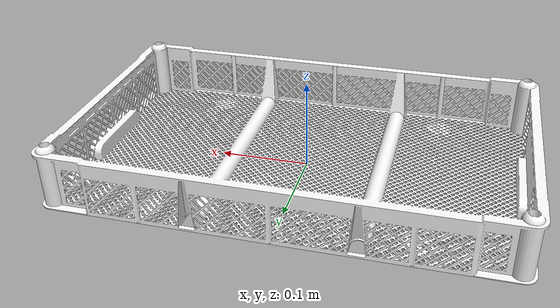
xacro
<?xml version="1.0" ?>
<robot name="bandeja_v3" xmlns:xacro="http://www.ros.org/wiki/xacro">

<xacro:arg name="include_ros_extensions" default="true"/>
<xacro:arg name="mesh_directory" default="package://bandeja_v3_description/meshes"/>
<xacro:property name="mesh_directory" value="$(arg mesh_directory)"/>

<xacro:include filename="materials.xacro" />
<xacro:if value="$(arg include_ros_extensions)">
  <xacro:include filename="bandeja_v3.trans" />
  <xacro:include filename="bandeja_v3.gazebo" />
</xacro:if>
<link name="base_link">
  <inertial>
    <origin xyz="-0.0028918745677257505 -6.225704412810632e-05 0.02014736677352704" rpy="0 0 0"/>
    <mass value="0.1995989885045743"/>
    <inertia ixx="0.002471" iyy="0.0057" izz="0.007946" ixy="-1e-06" iyz="1e-06" ixz="9e-06"/>
  </inertial>
  <visual>
    <origin xyz="0 0 0" rpy="0 0 0"/>
    <geometry>
      <mesh filename="${mesh_directory}/base_link.stl" scale="0.001 0.001 0.001"/>
    </geometry>
    <material name="silver"/>
  </visual>
  <collision>
    <origin xyz="0 0 0" rpy="0 0 0"/>
    <geometry>
      <mesh filename="${mesh_directory}/base_link.stl" scale="0.001 0.001 0.001"/>
    </geometry>
  </collision>
</link>

</robot>

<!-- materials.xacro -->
<robot name="bandeja_v3" xmlns:xacro="http://www.ros.org/wiki/xacro" >

<material name="silver">
  <color rgba="0.99 0.99 0.99 1.000"/>
</material>

</robot>

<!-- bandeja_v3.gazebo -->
<robot name="bandeja_v3" xmlns:xacro="http://www.ros.org/wiki/xacro" >

<xacro:property name="body_color" value="Gazebo/Silver" />

<gazebo>
  <plugin name="control" filename="libgazebo_ros_control.so"/>
</gazebo>
<gazebo reference="base_link">
  <material>${body_color}</material>
  <mu1>0.2</mu1>
  <mu2>0.2</mu2>
  <self_collide>true</self_collide>
  <gravity>true</gravity>
</gazebo>

</robot>
